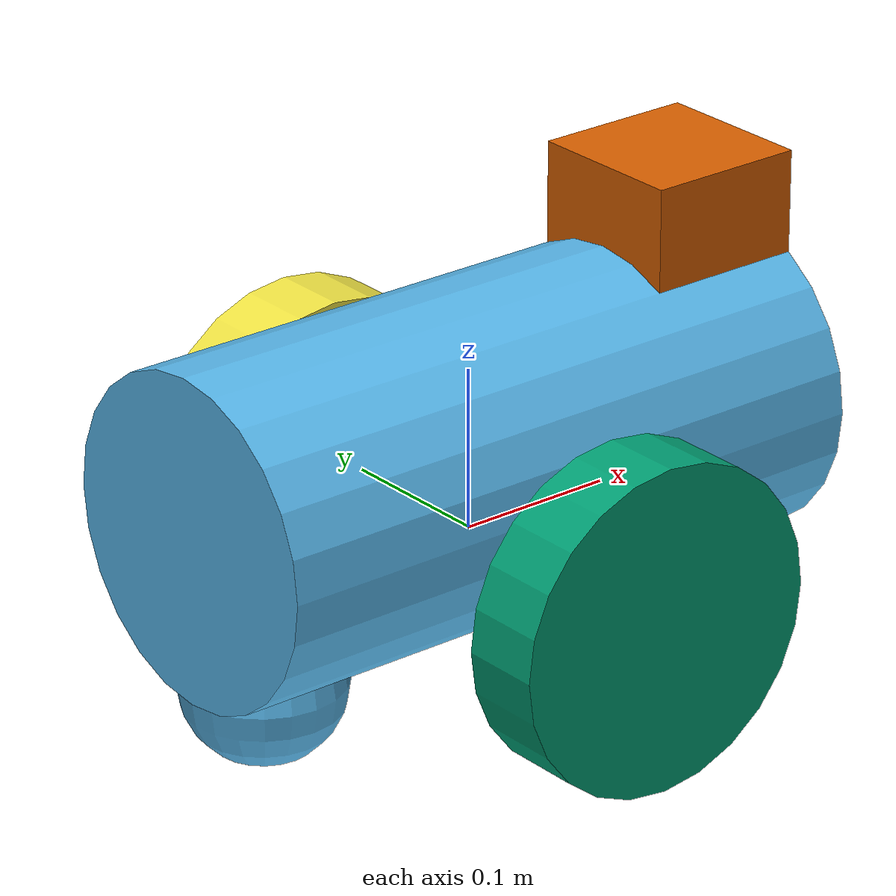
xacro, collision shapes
<?xml version='1.0'?>

<robot name="udacity_bot" xmlns:xacro="http://www.ros.org/wiki/xacro">

<!-- ################### XACRO Definitions ############################# -->
<!-- ################### XACRO Definitions ############################# -->
<!-- ################### XACRO Definitions ############################# -->
<!-- ################### XACRO Definitions ############################# -->

<xacro:property name="min_mass" value="0.1"/>

<!-- ################### XACRO Origins ############################# -->
 <xacro:macro name="shell_origin">
     <origin xyz="0 0 0" rpy="0 0 -1.5707" />
 </xacro:macro>

  <xacro:macro name="cylinder_origin">
     <origin xyz="0 0 0.05" rpy="0 -1.5707 0" />
 </xacro:macro>

 <xacro:macro name="zero_origin">
     <origin xyz="0 0 0" rpy="0 0 0" />
 </xacro:macro>

<xacro:macro name="wheel_link_origin">
    <origin xyz="0 0 0" rpy="0 1.5707 1.5707" />
</xacro:macro>

<!-- ################### XACRO Inertias ############################# -->

<xacro:macro name="default_inertia">
    <inertia
        ixx="0.1" ixy="0" ixz="0"
        iyy="0.1" iyz="0"
        izz="0.1"
      />
</xacro:macro>

<xacro:macro name="cylinder_inertia">
    <inertia
        ixx="0.2375" ixy="0" ixz="0"
        iyy="0.075" iyz="0"
        izz="0.2375"
      />
</xacro:macro>

<xacro:macro name="min_inertia">
    <inertia
        ixx="1e-6" ixy="0" ixz="0"
        iyy="1e-6" iyz="0"
        izz="1e-6"
      />
</xacro:macro>

<!-- ################### MACRO Generators ############################# -->
<!-- ################### MACRO Generators ############################# -->
<!-- ################### MACRO Generators ############################# -->
<!-- ################### MACRO Generators ############################# -->

<xacro:macro name="generate_gazebo_reference" params="link_name color">
    <gazebo reference="${link_name}">
        <material>Gazebo/${color}</material>
    </gazebo>
</xacro:macro>

<xacro:macro name="generate_geometry" params="shape radius=0 length=0 x=0 y=0 z=0">
<!--UNITS IN METERS-->

    <geometry>

        <xacro:if value="${shape == 'box'}">
            <box size="${x} ${y} ${z}"/>
        </xacro:if>
        <xacro:if value="${shape == 'cylinder'}">
            <cylinder length="${length}" radius="${radius}"/>
        </xacro:if>
        <xacro:if value="${shape == 'sphere'}">
            <sphere radius="${radius}"/>
        </xacro:if>

    </geometry>

</xacro:macro>

<xacro:macro name="generate_wheel_link" params="side">
    <link name="${side}_wheel">
       <inertial>
           <xacro:wheel_link_origin/>
           <mass value="5"/>
           <xacro:default_inertia/>
       </inertial>
       <collision>
             <xacro:wheel_link_origin/>
             <xacro:generate_geometry shape="cylinder" radius="0.1" length="0.05" />
       </collision>
       <visual>
             <xacro:wheel_link_origin/>
             <xacro:generate_geometry shape="sphere" radius="0.001"/>
       </visual>
   </link>

</xacro:macro>

<xacro:macro name="generate_wheel_joint" params="side">
    <joint type="continuous" name="${side}_wheel_hinge">

        <xacro:if value="${side == 'left'}">
            <origin xyz="0 0.15 0" rpy="0 0 0"/>
        </xacro:if>

        <xacro:if value="${side == 'right'}">
            <origin xyz="0 -0.15 0" rpy="0 0 0"/>
        </xacro:if>

        <parent link="chassis"/>
        <child link="${side}_wheel"/>
        <axis xyz="0 1 0" rpy="0 0 0"/>
        <limit effort="10000" velocity="1000"/>
        <joint_properties damping="1.0" friction="1.0"/>
    </joint>
</xacro:macro>

 <!-- ################### ROBOT Definitions ############################# -->
 <!-- ################### ROBOT Definitions ############################# -->
 <!-- ################### ROBOT Definitions ############################# -->
 <!-- ################### ROBOT Definitions ############################# -->

<!--Includes Sensor Plugins defined in .gazebo file-->
<xacro:include filename="$(find udacity_bot)/urdf/udacity_bot.gazebo" />

<link name="robot_footprint"></link>

  <joint name="robot_footprint_joint" type="fixed">
      <origin xyz="0 0 0" rpy="0 0 0" />
      <parent link="robot_footprint"/>
      <child link="chassis" />
  </joint>

<!-- BEGIN Chassis -->
  <link name='chassis'>
      <pose>0 0 0 0 0 0</pose>

      <inertial>
          <mass value="15.0"/>
          <origin xyz="0.0 0 0" rpy=" 0 0 0"/>
          <xacro:cylinder_inertia/>
    </inertial>

    <collision name='collision'>
        <xacro:cylinder_origin/>
        <geometry>
            <cylinder radius="0.1" length="0.4"/>
        </geometry>
    </collision>

    <visual name='chassis_visual'>
        <xacro:shell_origin/>
        <geometry>
            <mesh filename="package://udacity_bot/models/meshes/green_shell.dae"/>
        </geometry>
    </visual>

    <collision name='back_caster_collision'>
        <origin xyz="-0.15 0 -0.05" rpy=" 0 0 0"/>
        <geometry>
            <sphere radius="0.0499"/>
        </geometry>
        <surface>
              <friction>
                    <ode>
                        <mu>0</mu>
                        <mu2>0</mu2>
                        <slip1>1.0</slip1>
                        <slip2>1.0</slip2>
                    </ode>
              </friction>
        </surface>
    </collision>

    <visual name='back_caster_visual'>
        <origin xyz="-0.15 0 -0.05" rpy=" 0 0 0"/>
        <geometry>
            <sphere radius="0.001"/>
        </geometry>
    </visual>

    <collision name='front_caster_collision'>
        <origin xyz="0.15 0 -0.05" rpy=" 0 0 0"/>
        <geometry>
            <sphere radius="0.0499"/>
        </geometry>
        <surface>
              <friction>
                    <ode>
                        <mu>0</mu>
                        <mu2>0</mu2>
                        <slip1>1.0</slip1>
                        <slip2>1.0</slip2>
                    </ode>
              </friction>
        </surface>
    </collision>

    <visual name='front_caster_visual'>
        <origin xyz="0.15 0 -0.05" rpy=" 0 0 0"/>
        <geometry>
            <sphere radius="0.001"/>
        </geometry>
    </visual>
</link>
<!-- END Chassis -->

<!-- ################### LINK Definitions ############################# -->
<!-- ################### LINK Definitions ############################# -->
<!-- ################### LINK Definitions ############################# -->
<!-- ################### LINK Definitions ############################# -->

    <xacro:generate_wheel_link side="right"/>
    <xacro:generate_wheel_link side="left"/>

<!-- ################### JOINT Definitions ############################# -->
<!-- ################### JOINT Definitions ############################# -->
<!-- ################### JOINT Definitions ############################# -->
<!-- ################### JOINT Definitions ############################# -->

    <xacro:generate_wheel_joint side="right"/>
    <xacro:generate_wheel_joint side="left"/>

 <!--################### SENSOR Definitions ############################# -->
    <link name="camera">
        <inertial>
            <xacro:zero_origin/>
            <mass value="0.1"/>
            <xacro:default_inertia/>
        </inertial>
        <collision>
            <xacro:zero_origin/>
            <xacro:generate_geometry shape="box" x="0.05" y="0.05" z="0.05"/>
        </collision>
        <visual>
            <xacro:zero_origin/>
            <xacro:generate_geometry shape="sphere" radius="0.001"/>
        </visual>
    </link>

    <joint name="camera_joint" type="fixed">
        <origin xyz="0.2 0 0" rpy="0 0 0"/>
        <parent link="chassis"/>
        <child link="camera"/>
    </joint>

    <link name="hokuyo">
        <inertial>
            <xacro:zero_origin/>
            <mass value="0.1"/>
            <xacro:default_inertia/>
        </inertial>
        <collision>
            <xacro:zero_origin/>
            <xacro:generate_geometry shape="box" x="0.1" y="0.1" z="0.1"/>
        </collision>
        <visual>
            <xacro:zero_origin/>
            <xacro:generate_geometry shape="sphere" radius="0.001"/>
        </visual>
    </link>

    <joint name="hokuyo_joint" type="fixed">
        <origin xyz="0.15 0 0.15" rpy="0 0 0"/>
        <parent link="chassis"/>
        <child link="hokuyo"/>
    </joint>

</robot>
